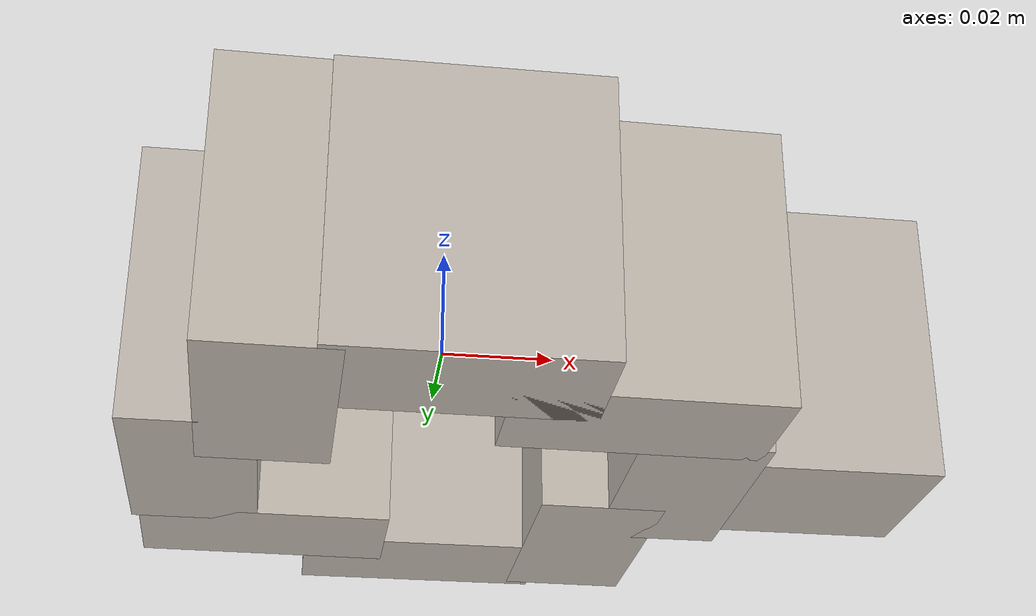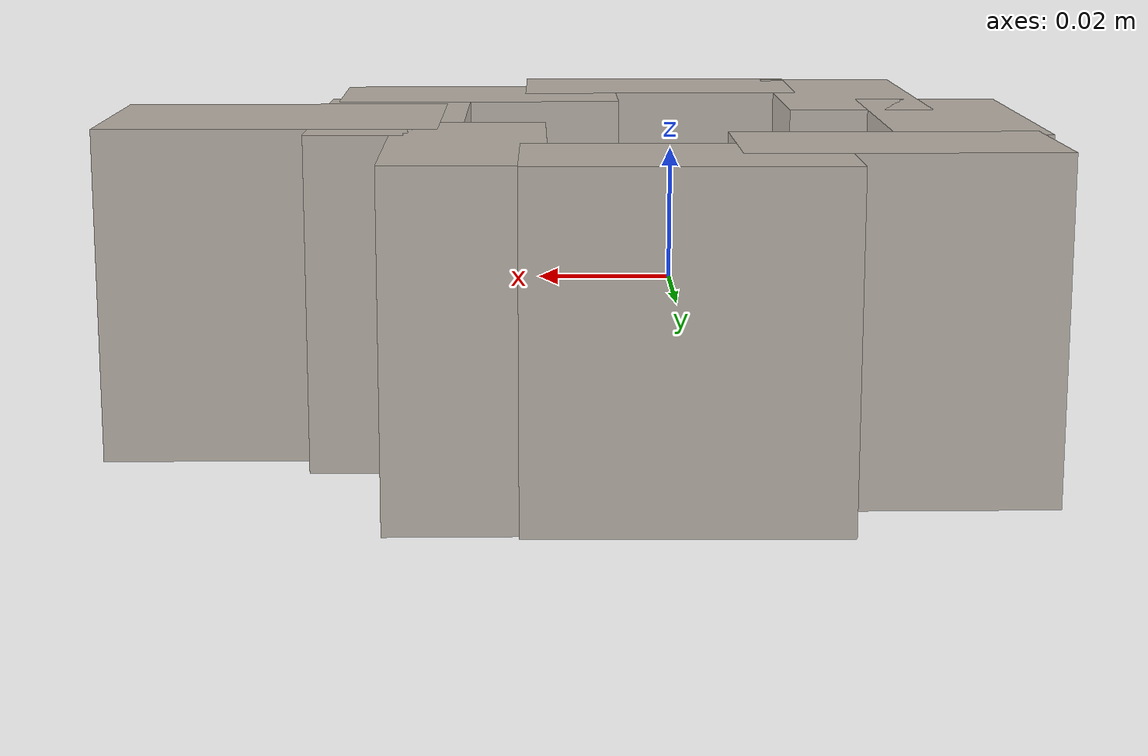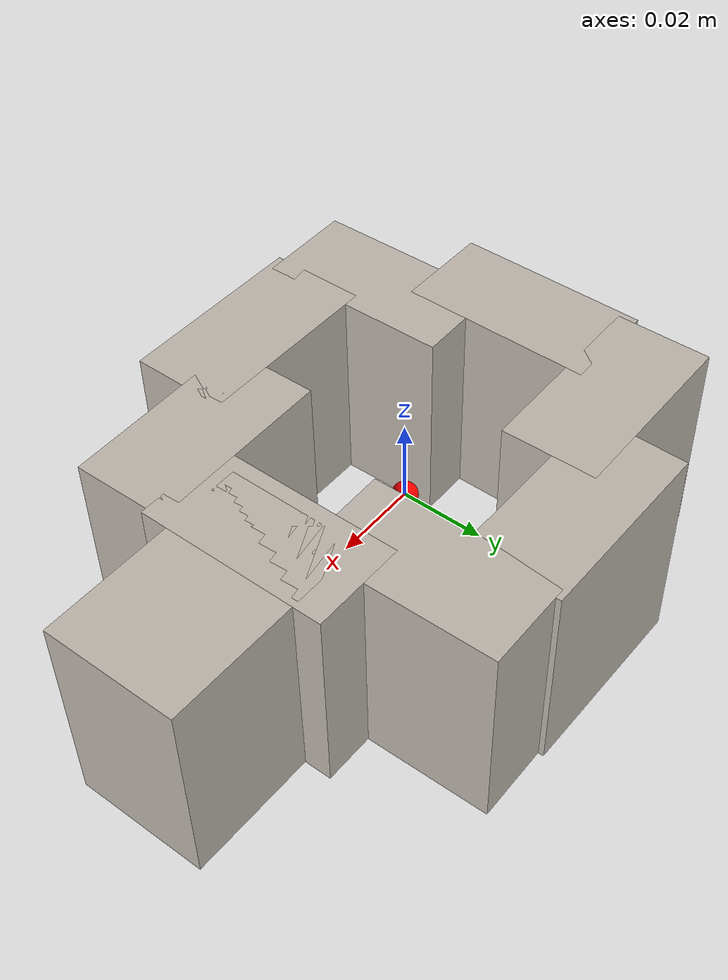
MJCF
<mujoco model="round-nut">
  <asset>
    <texture file="../textures/steel-scratched.png" type="cube" name="steel-metal"/>
    <material name="smetal" reflectance="1.0" shininess="1.0" specular="1.0" texrepeat="1 1" texture="steel-metal" texuniform="true"/>
  </asset>
  <worldbody>
    <body>
      <body name="object">
        <geom pos="-0.04245 0 0.0" size="0.01125 0.0225 0.025" type="box" solimp="0.998 0.998 0.001" solref="0.02 1" density="100" friction="0.95 0.3 0.1" group="0" condim="4" material="smetal" />
        <geom pos="0.04245 0 0.0" size="0.01125 0.0225 0.025" type="box" solimp="0.998 0.998 0.001" solref="0.02 1" density="100" friction="0.95 0.3 0.1" group="0" condim="4" material="smetal" />
        <geom pos="0 -0.04245 0.0" size="0.0225 0.01125 0.025" type="box" solimp="0.998 0.998 0.001" solref="0.02 1" density="100" friction="0.95 0.3 0.1" group="0" condim="4" material="smetal" />
        <geom pos="0 0.04245 0.0" size="0.0225 0.01125 0.025" type="box" solimp="0.998 0.998 0.001" solref="0.02 1" density="100" friction="0.95 0.3 0.1" group="0" condim="4" material="smetal" />
        <geom pos="-0.03 -0.03 0.0" size="0.01125 0.0225 0.025" axisangle='0 0 1 0.785398' type="box" solimp="0.998 0.998 0.001" solref="0.02 1" density="100" friction="0.95 0.3 0.1" group="0" condim="4" material="smetal" />
        <geom pos="0.03 0.03 0.0" size="0.01125 0.0225 0.025" axisangle='0 0 1 0.785398' type="box" solimp="0.998 0.998 0.001" solref="0.02 1" density="100" friction="0.95 0.3 0.1" group="0" condim="4" material="smetal" />
        <geom pos="0.03 -0.03 0.0" size="0.0225 0.01125 0.025" axisangle='0 0 1 0.785398' type="box" solimp="0.998 0.998 0.001" solref="0.02 1" density="100" friction="0.95 0.3 0.1" group="0" condim="4" material="smetal" />
        <geom pos="-0.03 0.03 0.0" size="0.0225 0.01125 0.025" axisangle='0 0 1 0.785398' type="box" solimp="0.998 0.998 0.001" solref="0.02 1" density="100" friction="0.95 0.3 0.1" group="0" condim="4" material="smetal" />
        <geom pos="0.06 0 0.0" size="0.02525 0.015875 0.025" type="box" solimp="0.998 0.998 0.001" solref="0.02 1" density="100" friction="0.95 0.3 0.1" group="0" condim="4" material="smetal" />
        <site rgba="1 0 0 1" size="0.005" pos="0.06 0 0.0" name="handle_site"/>
        <site rgba="1 0 0 1" size="0.003" pos="0 0 0" name="center_site"/>
      </body>
      <site rgba="0 0 0 0" size="0.005" pos="0 0 -0.05" name="bottom_site"/>
      <site rgba="0 0 0 0" size="0.005" pos="0 0 0.025" name="top_site"/>
      <site rgba="0 0 0 0" size="0.005" pos="0.11 0.05 0" name="horizontal_radius_site"/>
    </body>
  </worldbody>
</mujoco>
